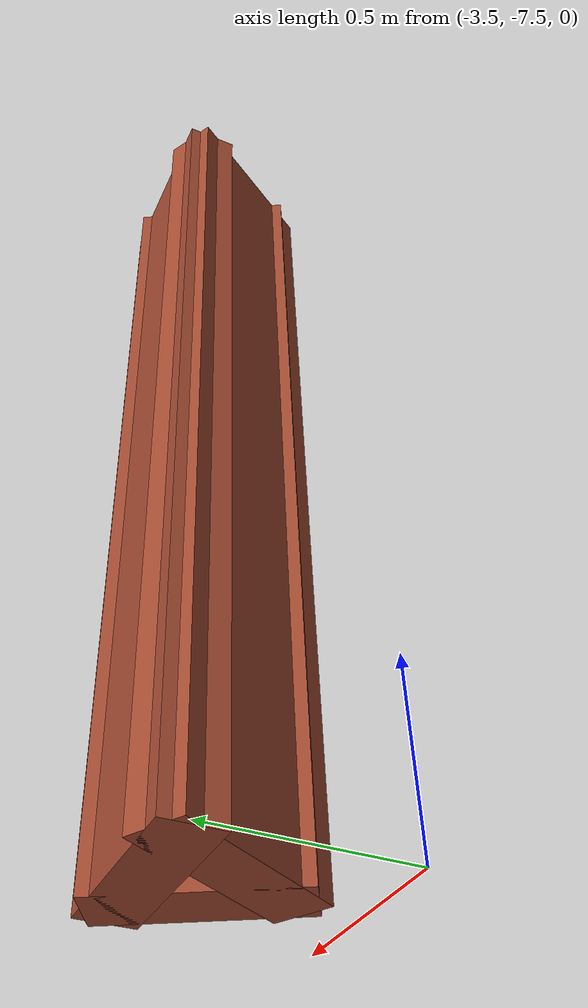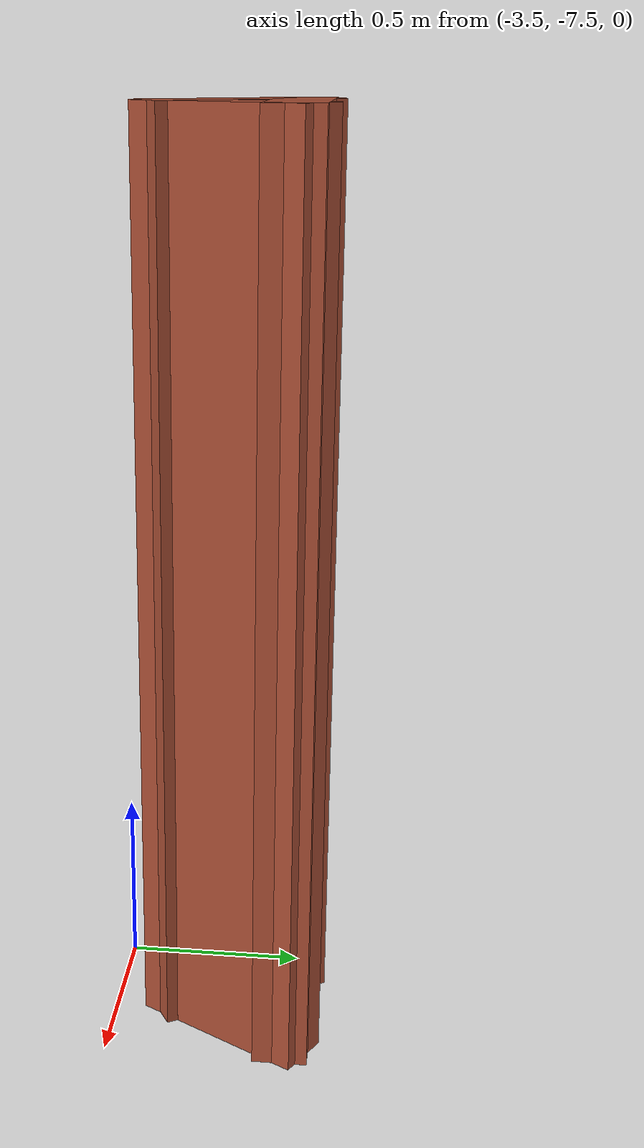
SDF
<?xml version='1.0'?>
<sdf version='1.7'>
  <model name='coluna'>
    <pose>-1.75619 -3.70903 0 0 -0 0</pose>
    <link name='Wall_1'>
      <collision name='Wall_1_Collision'>
        <geometry>
          <box>
            <size>0.5 0.15 2.5</size>
          </box>
        </geometry>
        <pose>0 0 1.25 0 -0 0</pose>
      </collision>
      <visual name='Wall_1_Visual'>
        <pose>0 0 1.25 0 -0 0</pose>
        <geometry>
          <box>
            <size>0.5 0.15 2.5</size>
          </box>
        </geometry>
        <material>
          <script>
            <uri>file://media/materials/scripts/gazebo.material</uri>
            <name>Gazebo/Bricks</name>
          </script>
          <ambient>1 1 1 1</ambient>
        </material>
        <meta>
          <layer>0</layer>
        </meta>
      </visual>
      <pose>-1.47874 -3.30347 0 0 -0 0</pose>
    </link>
    <link name='Wall_2'>
      <collision name='Wall_2_Collision'>
        <geometry>
          <box>
            <size>0.5 0.15 2.5</size>
          </box>
        </geometry>
        <pose>0 0 1.25 0 -0 0</pose>
      </collision>
      <visual name='Wall_2_Visual'>
        <pose>0 0 1.25 0 -0 0</pose>
        <geometry>
          <box>
            <size>0.5 0.15 2.5</size>
          </box>
        </geometry>
        <material>
          <script>
            <uri>file://media/materials/scripts/gazebo.material</uri>
            <name>Gazebo/Bricks</name>
          </script>
          <ambient>1 1 1 1</ambient>
        </material>
        <meta>
          <layer>0</layer>
        </meta>
      </visual>
      <pose>-1.39124 -3.45502 0 0 -0 -2.0944</pose>
    </link>
    <link name='Wall_3'>
      <collision name='Wall_3_Collision'>
        <geometry>
          <box>
            <size>0.5 0.15 2.5</size>
          </box>
        </geometry>
        <pose>0 0 1.25 0 -0 0</pose>
      </collision>
      <visual name='Wall_3_Visual'>
        <pose>0 0 1.25 0 -0 0</pose>
        <geometry>
          <box>
            <size>0.5 0.15 2.5</size>
          </box>
        </geometry>
        <material>
          <script>
            <uri>file://media/materials/scripts/gazebo.material</uri>
            <name>Gazebo/Bricks</name>
          </script>
          <ambient>1 1 1 1</ambient>
        </material>
        <meta>
          <layer>0</layer>
        </meta>
      </visual>
      <pose>-1.56624 -3.45502 0 0 -0 2.0944</pose>
    </link>
    <static>1</static>
  </model>
</sdf>
